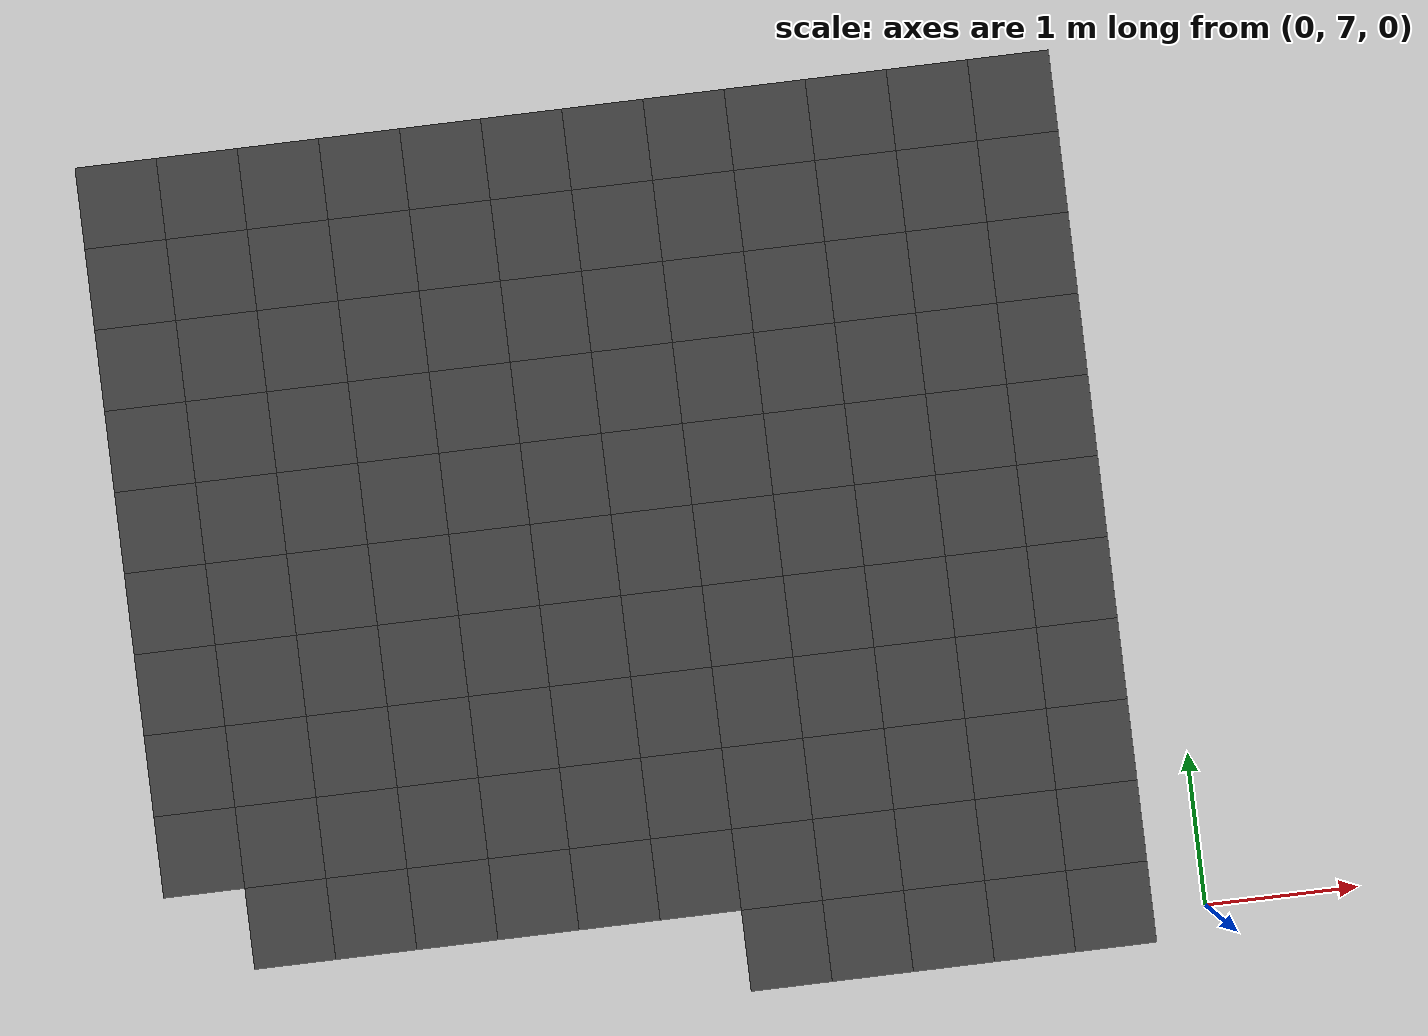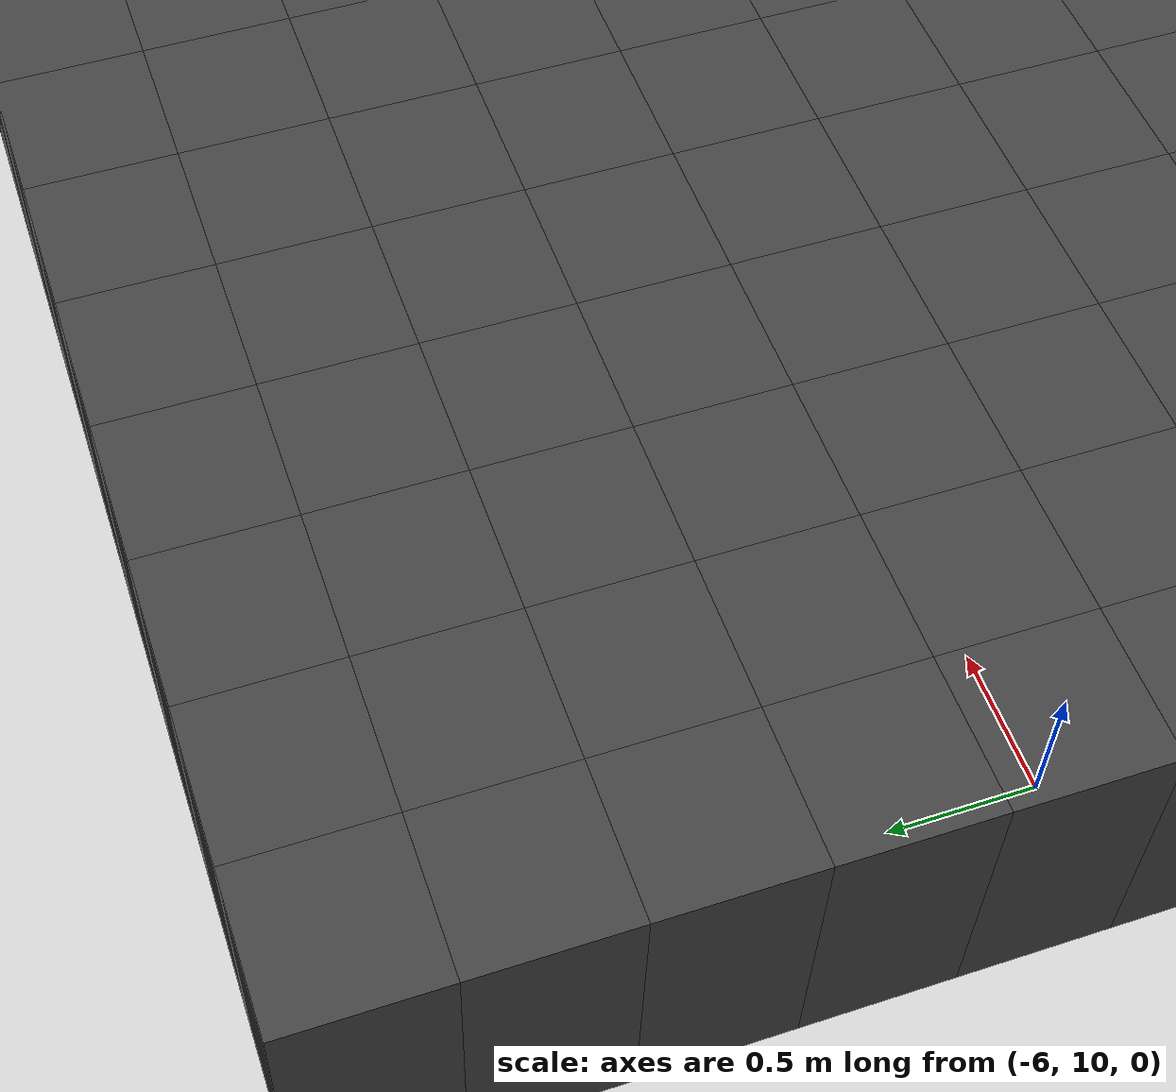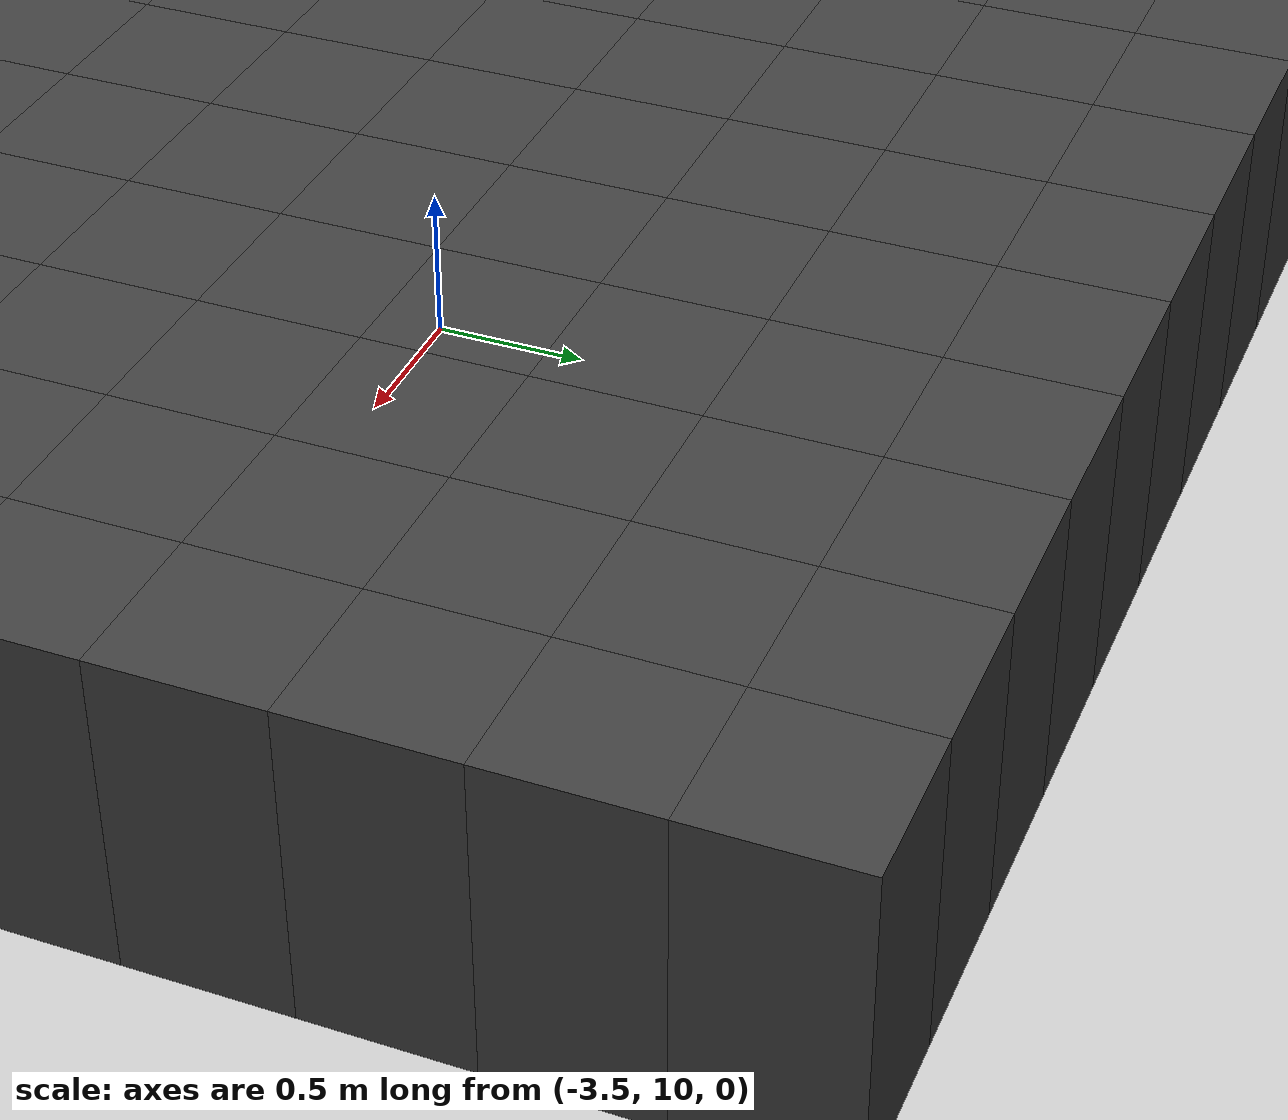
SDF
<sdf version="1.7">
 <world name="map_10726">
  <model name="ground_plane">
   <static>true</static>
   <link name="link">
    <collision name="collision">
     <geometry><plane><normal>0 0 1</normal><size>200 200</size></plane></geometry>
    </collision>
    <visual name="visual">
     <geometry><plane><normal>0 0 1</normal><size>200 200</size></plane></geometry>
     <material><ambient>0.8 0.8 0.8 1</ambient><diffuse>0.8 0.8 0.8 1</diffuse></material>
    </visual>
   </link>
  </model>
  <model name="maze_environment">
   <static>true</static>
   <link name="wall_12">
    <pose>-6.250 12.250 0.500 0 0 0</pose>
    <collision name="col"><geometry><box><size>0.5 0.5 1.0</size></box></geometry></collision>
    <visual name="vis">
     <geometry><box><size>0.5 0.5 1.0</size></box></geometry>
     <material><ambient>0.15 0.15 0.15 1</ambient><diffuse>0.25 0.25 0.25 1</diffuse></material>
    </visual>
   </link>
   <link name="wall_13">
    <pose>-5.750 12.250 0.500 0 0 0</pose>
    <collision name="col"><geometry><box><size>0.5 0.5 1.0</size></box></geometry></collision>
    <visual name="vis">
     <geometry><box><size>0.5 0.5 1.0</size></box></geometry>
     <material><ambient>0.15 0.15 0.15 1</ambient><diffuse>0.25 0.25 0.25 1</diffuse></material>
    </visual>
   </link>
   <link name="wall_14">
    <pose>-5.250 12.250 0.500 0 0 0</pose>
    <collision name="col"><geometry><box><size>0.5 0.5 1.0</size></box></geometry></collision>
    <visual name="vis">
     <geometry><box><size>0.5 0.5 1.0</size></box></geometry>
     <material><ambient>0.15 0.15 0.15 1</ambient><diffuse>0.25 0.25 0.25 1</diffuse></material>
    </visual>
   </link>
   <link name="wall_15">
    <pose>-4.750 12.250 0.500 0 0 0</pose>
    <collision name="col"><geometry><box><size>0.5 0.5 1.0</size></box></geometry></collision>
    <visual name="vis">
     <geometry><box><size>0.5 0.5 1.0</size></box></geometry>
     <material><ambient>0.15 0.15 0.15 1</ambient><diffuse>0.25 0.25 0.25 1</diffuse></material>
    </visual>
   </link>
   <link name="wall_16">
    <pose>-4.250 12.250 0.500 0 0 0</pose>
    <collision name="col"><geometry><box><size>0.5 0.5 1.0</size></box></geometry></collision>
    <visual name="vis">
     <geometry><box><size>0.5 0.5 1.0</size></box></geometry>
     <material><ambient>0.15 0.15 0.15 1</ambient><diffuse>0.25 0.25 0.25 1</diffuse></material>
    </visual>
   </link>
   <link name="wall_17">
    <pose>-3.750 12.250 0.500 0 0 0</pose>
    <collision name="col"><geometry><box><size>0.5 0.5 1.0</size></box></geometry></collision>
    <visual name="vis">
     <geometry><box><size>0.5 0.5 1.0</size></box></geometry>
     <material><ambient>0.15 0.15 0.15 1</ambient><diffuse>0.25 0.25 0.25 1</diffuse></material>
    </visual>
   </link>
   <link name="wall_18">
    <pose>-3.250 12.250 0.500 0 0 0</pose>
    <collision name="col"><geometry><box><size>0.5 0.5 1.0</size></box></geometry></collision>
    <visual name="vis">
     <geometry><box><size>0.5 0.5 1.0</size></box></geometry>
     <material><ambient>0.15 0.15 0.15 1</ambient><diffuse>0.25 0.25 0.25 1</diffuse></material>
    </visual>
   </link>
   <link name="wall_19">
    <pose>-2.750 12.250 0.500 0 0 0</pose>
    <collision name="col"><geometry><box><size>0.5 0.5 1.0</size></box></geometry></collision>
    <visual name="vis">
     <geometry><box><size>0.5 0.5 1.0</size></box></geometry>
     <material><ambient>0.15 0.15 0.15 1</ambient><diffuse>0.25 0.25 0.25 1</diffuse></material>
    </visual>
   </link>
   <link name="wall_20">
    <pose>-2.250 12.250 0.500 0 0 0</pose>
    <collision name="col"><geometry><box><size>0.5 0.5 1.0</size></box></geometry></collision>
    <visual name="vis">
     <geometry><box><size>0.5 0.5 1.0</size></box></geometry>
     <material><ambient>0.15 0.15 0.15 1</ambient><diffuse>0.25 0.25 0.25 1</diffuse></material>
    </visual>
   </link>
   <link name="wall_21">
    <pose>-1.750 12.250 0.500 0 0 0</pose>
    <collision name="col"><geometry><box><size>0.5 0.5 1.0</size></box></geometry></collision>
    <visual name="vis">
     <geometry><box><size>0.5 0.5 1.0</size></box></geometry>
     <material><ambient>0.15 0.15 0.15 1</ambient><diffuse>0.25 0.25 0.25 1</diffuse></material>
    </visual>
   </link>
   <link name="wall_22">
    <pose>-1.250 12.250 0.500 0 0 0</pose>
    <collision name="col"><geometry><box><size>0.5 0.5 1.0</size></box></geometry></collision>
    <visual name="vis">
     <geometry><box><size>0.5 0.5 1.0</size></box></geometry>
     <material><ambient>0.15 0.15 0.15 1</ambient><diffuse>0.25 0.25 0.25 1</diffuse></material>
    </visual>
   </link>
   <link name="wall_23">
    <pose>-0.750 12.250 0.500 0 0 0</pose>
    <collision name="col"><geometry><box><size>0.5 0.5 1.0</size></box></geometry></collision>
    <visual name="vis">
     <geometry><box><size>0.5 0.5 1.0</size></box></geometry>
     <material><ambient>0.15 0.15 0.15 1</ambient><diffuse>0.25 0.25 0.25 1</diffuse></material>
    </visual>
   </link>
   <link name="wall_59">
    <pose>-6.250 11.750 0.500 0 0 0</pose>
    <collision name="col"><geometry><box><size>0.5 0.5 1.0</size></box></geometry></collision>
    <visual name="vis">
     <geometry><box><size>0.5 0.5 1.0</size></box></geometry>
     <material><ambient>0.15 0.15 0.15 1</ambient><diffuse>0.25 0.25 0.25 1</diffuse></material>
    </visual>
   </link>
   <link name="wall_60">
    <pose>-5.750 11.750 0.500 0 0 0</pose>
    <collision name="col"><geometry><box><size>0.5 0.5 1.0</size></box></geometry></collision>
    <visual name="vis">
     <geometry><box><size>0.5 0.5 1.0</size></box></geometry>
     <material><ambient>0.15 0.15 0.15 1</ambient><diffuse>0.25 0.25 0.25 1</diffuse></material>
    </visual>
   </link>
   <link name="wall_61">
    <pose>-5.250 11.750 0.500 0 0 0</pose>
    <collision name="col"><geometry><box><size>0.5 0.5 1.0</size></box></geometry></collision>
    <visual name="vis">
     <geometry><box><size>0.5 0.5 1.0</size></box></geometry>
     <material><ambient>0.15 0.15 0.15 1</ambient><diffuse>0.25 0.25 0.25 1</diffuse></material>
    </visual>
   </link>
   <link name="wall_62">
    <pose>-4.750 11.750 0.500 0 0 0</pose>
    <collision name="col"><geometry><box><size>0.5 0.5 1.0</size></box></geometry></collision>
    <visual name="vis">
     <geometry><box><size>0.5 0.5 1.0</size></box></geometry>
     <material><ambient>0.15 0.15 0.15 1</ambient><diffuse>0.25 0.25 0.25 1</diffuse></material>
    </visual>
   </link>
   <link name="wall_63">
    <pose>-4.250 11.750 0.500 0 0 0</pose>
    <collision name="col"><geometry><box><size>0.5 0.5 1.0</size></box></geometry></collision>
    <visual name="vis">
     <geometry><box><size>0.5 0.5 1.0</size></box></geometry>
     <material><ambient>0.15 0.15 0.15 1</ambient><diffuse>0.25 0.25 0.25 1</diffuse></material>
    </visual>
   </link>
   <link name="wall_64">
    <pose>-3.750 11.750 0.500 0 0 0</pose>
    <collision name="col"><geometry><box><size>0.5 0.5 1.0</size></box></geometry></collision>
    <visual name="vis">
     <geometry><box><size>0.5 0.5 1.0</size></box></geometry>
     <material><ambient>0.15 0.15 0.15 1</ambient><diffuse>0.25 0.25 0.25 1</diffuse></material>
    </visual>
   </link>
   <link name="wall_65">
    <pose>-3.250 11.750 0.500 0 0 0</pose>
    <collision name="col"><geometry><box><size>0.5 0.5 1.0</size></box></geometry></collision>
    <visual name="vis">
     <geometry><box><size>0.5 0.5 1.0</size></box></geometry>
     <material><ambient>0.15 0.15 0.15 1</ambient><diffuse>0.25 0.25 0.25 1</diffuse></material>
    </visual>
   </link>
   <link name="wall_66">
    <pose>-2.750 11.750 0.500 0 0 0</pose>
    <collision name="col"><geometry><box><size>0.5 0.5 1.0</size></box></geometry></collision>
    <visual name="vis">
     <geometry><box><size>0.5 0.5 1.0</size></box></geometry>
     <material><ambient>0.15 0.15 0.15 1</ambient><diffuse>0.25 0.25 0.25 1</diffuse></material>
    </visual>
   </link>
   <link name="wall_67">
    <pose>-2.250 11.750 0.500 0 0 0</pose>
    <collision name="col"><geometry><box><size>0.5 0.5 1.0</size></box></geometry></collision>
    <visual name="vis">
     <geometry><box><size>0.5 0.5 1.0</size></box></geometry>
     <material><ambient>0.15 0.15 0.15 1</ambient><diffuse>0.25 0.25 0.25 1</diffuse></material>
    </visual>
   </link>
   <link name="wall_68">
    <pose>-1.750 11.750 0.500 0 0 0</pose>
    <collision name="col"><geometry><box><size>0.5 0.5 1.0</size></box></geometry></collision>
    <visual name="vis">
     <geometry><box><size>0.5 0.5 1.0</size></box></geometry>
     <material><ambient>0.15 0.15 0.15 1</ambient><diffuse>0.25 0.25 0.25 1</diffuse></material>
    </visual>
   </link>
   <link name="wall_69">
    <pose>-1.250 11.750 0.500 0 0 0</pose>
    <collision name="col"><geometry><box><size>0.5 0.5 1.0</size></box></geometry></collision>
    <visual name="vis">
     <geometry><box><size>0.5 0.5 1.0</size></box></geometry>
     <material><ambient>0.15 0.15 0.15 1</ambient><diffuse>0.25 0.25 0.25 1</diffuse></material>
    </visual>
   </link>
   <link name="wall_70">
    <pose>-0.750 11.750 0.500 0 0 0</pose>
    <collision name="col"><geometry><box><size>0.5 0.5 1.0</size></box></geometry></collision>
    <visual name="vis">
     <geometry><box><size>0.5 0.5 1.0</size></box></geometry>
     <material><ambient>0.15 0.15 0.15 1</ambient><diffuse>0.25 0.25 0.25 1</diffuse></material>
    </visual>
   </link>
   <link name="wall_106">
    <pose>-6.250 11.250 0.500 0 0 0</pose>
    <collision name="col"><geometry><box><size>0.5 0.5 1.0</size></box></geometry></collision>
    <visual name="vis">
     <geometry><box><size>0.5 0.5 1.0</size></box></geometry>
     <material><ambient>0.15 0.15 0.15 1</ambient><diffuse>0.25 0.25 0.25 1</diffuse></material>
    </visual>
   </link>
   <link name="wall_107">
    <pose>-5.750 11.250 0.500 0 0 0</pose>
    <collision name="col"><geometry><box><size>0.5 0.5 1.0</size></box></geometry></collision>
    <visual name="vis">
     <geometry><box><size>0.5 0.5 1.0</size></box></geometry>
     <material><ambient>0.15 0.15 0.15 1</ambient><diffuse>0.25 0.25 0.25 1</diffuse></material>
    </visual>
   </link>
   <link name="wall_108">
    <pose>-5.250 11.250 0.500 0 0 0</pose>
    <collision name="col"><geometry><box><size>0.5 0.5 1.0</size></box></geometry></collision>
    <visual name="vis">
     <geometry><box><size>0.5 0.5 1.0</size></box></geometry>
     <material><ambient>0.15 0.15 0.15 1</ambient><diffuse>0.25 0.25 0.25 1</diffuse></material>
    </visual>
   </link>
   <link name="wall_109">
    <pose>-4.750 11.250 0.500 0 0 0</pose>
    <collision name="col"><geometry><box><size>0.5 0.5 1.0</size></box></geometry></collision>
    <visual name="vis">
     <geometry><box><size>0.5 0.5 1.0</size></box></geometry>
     <material><ambient>0.15 0.15 0.15 1</ambient><diffuse>0.25 0.25 0.25 1</diffuse></material>
    </visual>
   </link>
   <link name="wall_110">
    <pose>-4.250 11.250 0.500 0 0 0</pose>
    <collision name="col"><geometry><box><size>0.5 0.5 1.0</size></box></geometry></collision>
    <visual name="vis">
     <geometry><box><size>0.5 0.5 1.0</size></box></geometry>
     <material><ambient>0.15 0.15 0.15 1</ambient><diffuse>0.25 0.25 0.25 1</diffuse></material>
    </visual>
   </link>
   <link name="wall_111">
    <pose>-3.750 11.250 0.500 0 0 0</pose>
    <collision name="col"><geometry><box><size>0.5 0.5 1.0</size></box></geometry></collision>
    <visual name="vis">
     <geometry><box><size>0.5 0.5 1.0</size></box></geometry>
     <material><ambient>0.15 0.15 0.15 1</ambient><diffuse>0.25 0.25 0.25 1</diffuse></material>
    </visual>
   </link>
   <link name="wall_112">
    <pose>-3.250 11.250 0.500 0 0 0</pose>
    <collision name="col"><geometry><box><size>0.5 0.5 1.0</size></box></geometry></collision>
    <visual name="vis">
     <geometry><box><size>0.5 0.5 1.0</size></box></geometry>
     <material><ambient>0.15 0.15 0.15 1</ambient><diffuse>0.25 0.25 0.25 1</diffuse></material>
    </visual>
   </link>
   <link name="wall_113">
    <pose>-2.750 11.250 0.500 0 0 0</pose>
    <collision name="col"><geometry><box><size>0.5 0.5 1.0</size></box></geometry></collision>
    <visual name="vis">
     <geometry><box><size>0.5 0.5 1.0</size></box></geometry>
     <material><ambient>0.15 0.15 0.15 1</ambient><diffuse>0.25 0.25 0.25 1</diffuse></material>
    </visual>
   </link>
   <link name="wall_114">
    <pose>-2.250 11.250 0.500 0 0 0</pose>
    <collision name="col"><geometry><box><size>0.5 0.5 1.0</size></box></geometry></collision>
    <visual name="vis">
     <geometry><box><size>0.5 0.5 1.0</size></box></geometry>
     <material><ambient>0.15 0.15 0.15 1</ambient><diffuse>0.25 0.25 0.25 1</diffuse></material>
    </visual>
   </link>
   <link name="wall_115">
    <pose>-1.750 11.250 0.500 0 0 0</pose>
    <collision name="col"><geometry><box><size>0.5 0.5 1.0</size></box></geometry></collision>
    <visual name="vis">
     <geometry><box><size>0.5 0.5 1.0</size></box></geometry>
     <material><ambient>0.15 0.15 0.15 1</ambient><diffuse>0.25 0.25 0.25 1</diffuse></material>
    </visual>
   </link>
   <link name="wall_116">
    <pose>-1.250 11.250 0.500 0 0 0</pose>
    <collision name="col"><geometry><box><size>0.5 0.5 1.0</size></box></geometry></collision>
    <visual name="vis">
     <geometry><box><size>0.5 0.5 1.0</size></box></geometry>
     <material><ambient>0.15 0.15 0.15 1</ambient><diffuse>0.25 0.25 0.25 1</diffuse></material>
    </visual>
   </link>
   <link name="wall_117">
    <pose>-0.750 11.250 0.500 0 0 0</pose>
    <collision name="col"><geometry><box><size>0.5 0.5 1.0</size></box></geometry></collision>
    <visual name="vis">
     <geometry><box><size>0.5 0.5 1.0</size></box></geometry>
     <material><ambient>0.15 0.15 0.15 1</ambient><diffuse>0.25 0.25 0.25 1</diffuse></material>
    </visual>
   </link>
   <link name="wall_153">
    <pose>-6.250 10.750 0.500 0 0 0</pose>
    <collision name="col"><geometry><box><size>0.5 0.5 1.0</size></box></geometry></collision>
    <visual name="vis">
     <geometry><box><size>0.5 0.5 1.0</size></box></geometry>
     <material><ambient>0.15 0.15 0.15 1</ambient><diffuse>0.25 0.25 0.25 1</diffuse></material>
    </visual>
   </link>
   <link name="wall_154">
    <pose>-5.750 10.750 0.500 0 0 0</pose>
    <collision name="col"><geometry><box><size>0.5 0.5 1.0</size></box></geometry></collision>
    <visual name="vis">
     <geometry><box><size>0.5 0.5 1.0</size></box></geometry>
     <material><ambient>0.15 0.15 0.15 1</ambient><diffuse>0.25 0.25 0.25 1</diffuse></material>
    </visual>
   </link>
   <link name="wall_155">
    <pose>-5.250 10.750 0.500 0 0 0</pose>
    <collision name="col"><geometry><box><size>0.5 0.5 1.0</size></box></geometry></collision>
    <visual name="vis">
     <geometry><box><size>0.5 0.5 1.0</size></box></geometry>
     <material><ambient>0.15 0.15 0.15 1</ambient><diffuse>0.25 0.25 0.25 1</diffuse></material>
    </visual>
   </link>
   <link name="wall_156">
    <pose>-4.750 10.750 0.500 0 0 0</pose>
    <collision name="col"><geometry><box><size>0.5 0.5 1.0</size></box></geometry></collision>
    <visual name="vis">
     <geometry><box><size>0.5 0.5 1.0</size></box></geometry>
     <material><ambient>0.15 0.15 0.15 1</ambient><diffuse>0.25 0.25 0.25 1</diffuse></material>
    </visual>
   </link>
   <link name="wall_157">
    <pose>-4.250 10.750 0.500 0 0 0</pose>
    <collision name="col"><geometry><box><size>0.5 0.5 1.0</size></box></geometry></collision>
    <visual name="vis">
     <geometry><box><size>0.5 0.5 1.0</size></box></geometry>
     <material><ambient>0.15 0.15 0.15 1</ambient><diffuse>0.25 0.25 0.25 1</diffuse></material>
    </visual>
   </link>
   <link name="wall_158">
    <pose>-3.750 10.750 0.500 0 0 0</pose>
    <collision name="col"><geometry><box><size>0.5 0.5 1.0</size></box></geometry></collision>
    <visual name="vis">
     <geometry><box><size>0.5 0.5 1.0</size></box></geometry>
     <material><ambient>0.15 0.15 0.15 1</ambient><diffuse>0.25 0.25 0.25 1</diffuse></material>
    </visual>
   </link>
   <link name="wall_159">
    <pose>-3.250 10.750 0.500 0 0 0</pose>
    <collision name="col"><geometry><box><size>0.5 0.5 1.0</size></box></geometry></collision>
    <visual name="vis">
     <geometry><box><size>0.5 0.5 1.0</size></box></geometry>
     <material><ambient>0.15 0.15 0.15 1</ambient><diffuse>0.25 0.25 0.25 1</diffuse></material>
    </visual>
   </link>
   <link name="wall_160">
    <pose>-2.750 10.750 0.500 0 0 0</pose>
    <collision name="col"><geometry><box><size>0.5 0.5 1.0</size></box></geometry></collision>
    <visual name="vis">
     <geometry><box><size>0.5 0.5 1.0</size></box></geometry>
     <material><ambient>0.15 0.15 0.15 1</ambient><diffuse>0.25 0.25 0.25 1</diffuse></material>
    </visual>
   </link>
   <link name="wall_161">
    <pose>-2.250 10.750 0.500 0 0 0</pose>
    <collision name="col"><geometry><box><size>0.5 0.5 1.0</size></box></geometry></collision>
    <visual name="vis">
     <geometry><box><size>0.5 0.5 1.0</size></box></geometry>
     <material><ambient>0.15 0.15 0.15 1</ambient><diffuse>0.25 0.25 0.25 1</diffuse></material>
    </visual>
   </link>
   <link name="wall_162">
    <pose>-1.750 10.750 0.500 0 0 0</pose>
    <collision name="col"><geometry><box><size>0.5 0.5 1.0</size></box></geometry></collision>
    <visual name="vis">
     <geometry><box><size>0.5 0.5 1.0</size></box></geometry>
     <material><ambient>0.15 0.15 0.15 1</ambient><diffuse>0.25 0.25 0.25 1</diffuse></material>
    </visual>
   </link>
   <link name="wall_163">
    <pose>-1.250 10.750 0.500 0 0 0</pose>
    <collision name="col"><geometry><box><size>0.5 0.5 1.0</size></box></geometry></collision>
    <visual name="vis">
     <geometry><box><size>0.5 0.5 1.0</size></box></geometry>
     <material><ambient>0.15 0.15 0.15 1</ambient><diffuse>0.25 0.25 0.25 1</diffuse></material>
    </visual>
   </link>
   <link name="wall_164">
    <pose>-0.750 10.750 0.500 0 0 0</pose>
    <collision name="col"><geometry><box><size>0.5 0.5 1.0</size></box></geometry></collision>
    <visual name="vis">
     <geometry><box><size>0.5 0.5 1.0</size></box></geometry>
     <material><ambient>0.15 0.15 0.15 1</ambient><diffuse>0.25 0.25 0.25 1</diffuse></material>
    </visual>
   </link>
   <link name="wall_202">
    <pose>-6.250 10.250 0.500 0 0 0</pose>
    <collision name="col"><geometry><box><size>0.5 0.5 1.0</size></box></geometry></collision>
    <visual name="vis">
     <geometry><box><size>0.5 0.5 1.0</size></box></geometry>
     <material><ambient>0.15 0.15 0.15 1</ambient><diffuse>0.25 0.25 0.25 1</diffuse></material>
    </visual>
   </link>
   <link name="wall_203">
    <pose>-5.750 10.250 0.500 0 0 0</pose>
    <collision name="col"><geometry><box><size>0.5 0.5 1.0</size></box></geometry></collision>
    <visual name="vis">
     <geometry><box><size>0.5 0.5 1.0</size></box></geometry>
     <material><ambient>0.15 0.15 0.15 1</ambient><diffuse>0.25 0.25 0.25 1</diffuse></material>
    </visual>
   </link>
   <link name="wall_204">
    <pose>-5.250 10.250 0.500 0 0 0</pose>
    <collision name="col"><geometry><box><size>0.5 0.5 1.0</size></box></geometry></collision>
    <visual name="vis">
     <geometry><box><size>0.5 0.5 1.0</size></box></geometry>
     <material><ambient>0.15 0.15 0.15 1</ambient><diffuse>0.25 0.25 0.25 1</diffuse></material>
    </visual>
   </link>
   <link name="wall_205">
    <pose>-4.750 10.250 0.500 0 0 0</pose>
    <collision name="col"><geometry><box><size>0.5 0.5 1.0</size></box></geometry></collision>
    <visual name="vis">
     <geometry><box><size>0.5 0.5 1.0</size></box></geometry>
     <material><ambient>0.15 0.15 0.15 1</ambient><diffuse>0.25 0.25 0.25 1</diffuse></material>
    </visual>
   </link>
   <link name="wall_206">
    <pose>-4.250 10.250 0.500 0 0 0</pose>
    <collision name="col"><geometry><box><size>0.5 0.5 1.0</size></box></geometry></collision>
    <visual name="vis">
     <geometry><box><size>0.5 0.5 1.0</size></box></geometry>
     <material><ambient>0.15 0.15 0.15 1</ambient><diffuse>0.25 0.25 0.25 1</diffuse></material>
    </visual>
   </link>
   <link name="wall_207">
    <pose>-3.750 10.250 0.500 0 0 0</pose>
    <collision name="col"><geometry><box><size>0.5 0.5 1.0</size></box></geometry></collision>
    <visual name="vis">
     <geometry><box><size>0.5 0.5 1.0</size></box></geometry>
     <material><ambient>0.15 0.15 0.15 1</ambient><diffuse>0.25 0.25 0.25 1</diffuse></material>
    </visual>
   </link>
   <link name="wall_208">
    <pose>-3.250 10.250 0.500 0 0 0</pose>
    <collision name="col"><geometry><box><size>0.5 0.5 1.0</size></box></geometry></collision>
    <visual name="vis">
     <geometry><box><size>0.5 0.5 1.0</size></box></geometry>
     <material><ambient>0.15 0.15 0.15 1</ambient><diffuse>0.25 0.25 0.25 1</diffuse></material>
    </visual>
   </link>
   <link name="wall_209">
    <pose>-2.750 10.250 0.500 0 0 0</pose>
    <collision name="col"><geometry><box><size>0.5 0.5 1.0</size></box></geometry></collision>
    <visual name="vis">
     <geometry><box><size>0.5 0.5 1.0</size></box></geometry>
     <material><ambient>0.15 0.15 0.15 1</ambient><diffuse>0.25 0.25 0.25 1</diffuse></material>
    </visual>
   </link>
   <link name="wall_210">
    <pose>-2.250 10.250 0.500 0 0 0</pose>
    <collision name="col"><geometry><box><size>0.5 0.5 1.0</size></box></geometry></collision>
    <visual name="vis">
     <geometry><box><size>0.5 0.5 1.0</size></box></geometry>
     <material><ambient>0.15 0.15 0.15 1</ambient><diffuse>0.25 0.25 0.25 1</diffuse></material>
    </visual>
   </link>
   <link name="wall_211">
    <pose>-1.750 10.250 0.500 0 0 0</pose>
    <collision name="col"><geometry><box><size>0.5 0.5 1.0</size></box></geometry></collision>
    <visual name="vis">
     <geometry><box><size>0.5 0.5 1.0</size></box></geometry>
     <material><ambient>0.15 0.15 0.15 1</ambient><diffuse>0.25 0.25 0.25 1</diffuse></material>
    </visual>
   </link>
   <link name="wall_212">
    <pose>-1.250 10.250 0.500 0 0 0</pose>
    <collision name="col"><geometry><box><size>0.5 0.5 1.0</size></box></geometry></collision>
    <visual name="vis">
     <geometry><box><size>0.5 0.5 1.0</size></box></geometry>
     <material><ambient>0.15 0.15 0.15 1</ambient><diffuse>0.25 0.25 0.25 1</diffuse></material>
    </visual>
   </link>
   <link name="wall_213">
    <pose>-0.750 10.250 0.500 0 0 0</pose>
    <collision name="col"><geometry><box><size>0.5 0.5 1.0</size></box></geometry></collision>
    <visual name="vis">
     <geometry><box><size>0.5 0.5 1.0</size></box></geometry>
     <material><ambient>0.15 0.15 0.15 1</ambient><diffuse>0.25 0.25 0.25 1</diffuse></material>
    </visual>
   </link>
   <link name="wall_251">
    <pose>-6.250 9.750 0.500 0 0 0</pose>
    <collision name="col"><geometry><box><size>0.5 0.5 1.0</size></box></geometry></collision>
    <visual name="vis">
     <geometry><box><size>0.5 0.5 1.0</size></box></geometry>
     <material><ambient>0.15 0.15 0.15 1</ambient><diffuse>0.25 0.25 0.25 1</diffuse></material>
    </visual>
   </link>
   <link name="wall_252">
    <pose>-5.750 9.750 0.500 0 0 0</pose>
    <collision name="col"><geometry><box><size>0.5 0.5 1.0</size></box></geometry></collision>
    <visual name="vis">
     <geometry><box><size>0.5 0.5 1.0</size></box></geometry>
     <material><ambient>0.15 0.15 0.15 1</ambient><diffuse>0.25 0.25 0.25 1</diffuse></material>
    </visual>
   </link>
   <link name="wall_253">
    <pose>-5.250 9.750 0.500 0 0 0</pose>
    <collision name="col"><geometry><box><size>0.5 0.5 1.0</size></box></geometry></collision>
    <visual name="vis">
     <geometry><box><size>0.5 0.5 1.0</size></box></geometry>
     <material><ambient>0.15 0.15 0.15 1</ambient><diffuse>0.25 0.25 0.25 1</diffuse></material>
    </visual>
   </link>
   <link name="wall_254">
    <pose>-4.750 9.750 0.500 0 0 0</pose>
    <collision name="col"><geometry><box><size>0.5 0.5 1.0</size></box></geometry></collision>
    <visual name="vis">
     <geometry><box><size>0.5 0.5 1.0</size></box></geometry>
     <material><ambient>0.15 0.15 0.15 1</ambient><diffuse>0.25 0.25 0.25 1</diffuse></material>
    </visual>
   </link>
   <link name="wall_255">
    <pose>-4.250 9.750 0.500 0 0 0</pose>
    <collision name="col"><geometry><box><size>0.5 0.5 1.0</size></box></geometry></collision>
    <visual name="vis">
     <geometry><box><size>0.5 0.5 1.0</size></box></geometry>
     <material><ambient>0.15 0.15 0.15 1</ambient><diffuse>0.25 0.25 0.25 1</diffuse></material>
    </visual>
   </link>
   <link name="wall_256">
    <pose>-3.750 9.750 0.500 0 0 0</pose>
    <collision name="col"><geometry><box><size>0.5 0.5 1.0</size></box></geometry></collision>
    <visual name="vis">
     <geometry><box><size>0.5 0.5 1.0</size></box></geometry>
     <material><ambient>0.15 0.15 0.15 1</ambient><diffuse>0.25 0.25 0.25 1</diffuse></material>
    </visual>
   </link>
   <link name="wall_257">
    <pose>-3.250 9.750 0.500 0 0 0</pose>
    <collision name="col"><geometry><box><size>0.5 0.5 1.0</size></box></geometry></collision>
    <visual name="vis">
     <geometry><box><size>0.5 0.5 1.0</size></box></geometry>
     <material><ambient>0.15 0.15 0.15 1</ambient><diffuse>0.25 0.25 0.25 1</diffuse></material>
    </visual>
   </link>
   <link name="wall_258">
    <pose>-2.750 9.750 0.500 0 0 0</pose>
    <collision name="col"><geometry><box><size>0.5 0.5 1.0</size></box></geometry></collision>
    <visual name="vis">
     <geometry><box><size>0.5 0.5 1.0</size></box></geometry>
     <material><ambient>0.15 0.15 0.15 1</ambient><diffuse>0.25 0.25 0.25 1</diffuse></material>
    </visual>
   </link>
   <link name="wall_259">
    <pose>-2.250 9.750 0.500 0 0 0</pose>
    <collision name="col"><geometry><box><size>0.5 0.5 1.0</size></box></geometry></collision>
    <visual name="vis">
     <geometry><box><size>0.5 0.5 1.0</size></box></geometry>
     <material><ambient>0.15 0.15 0.15 1</ambient><diffuse>0.25 0.25 0.25 1</diffuse></material>
    </visual>
   </link>
   <link name="wall_260">
    <pose>-1.750 9.750 0.500 0 0 0</pose>
    <collision name="col"><geometry><box><size>0.5 0.5 1.0</size></box></geometry></collision>
    <visual name="vis">
     <geometry><box><size>0.5 0.5 1.0</size></box></geometry>
     <material><ambient>0.15 0.15 0.15 1</ambient><diffuse>0.25 0.25 0.25 1</diffuse></material>
    </visual>
   </link>
   <link name="wall_261">
    <pose>-1.250 9.750 0.500 0 0 0</pose>
    <collision name="col"><geometry><box><size>0.5 0.5 1.0</size></box></geometry></collision>
    <visual name="vis">
     <geometry><box><size>0.5 0.5 1.0</size></box></geometry>
     <material><ambient>0.15 0.15 0.15 1</ambient><diffuse>0.25 0.25 0.25 1</diffuse></material>
    </visual>
   </link>
   <link name="wall_262">
    <pose>-0.750 9.750 0.500 0 0 0</pose>
    <collision name="col"><geometry><box><size>0.5 0.5 1.0</size></box></geometry></collision>
    <visual name="vis">
     <geometry><box><size>0.5 0.5 1.0</size></box></geometry>
     <material><ambient>0.15 0.15 0.15 1</ambient><diffuse>0.25 0.25 0.25 1</diffuse></material>
    </visual>
   </link>
   <link name="wall_300">
    <pose>-6.250 9.250 0.500 0 0 0</pose>
    <collision name="col"><geometry><box><size>0.5 0.5 1.0</size></box></geometry></collision>
    <visual name="vis">
     <geometry><box><size>0.5 0.5 1.0</size></box></geometry>
     <material><ambient>0.15 0.15 0.15 1</ambient><diffuse>0.25 0.25 0.25 1</diffuse></material>
    </visual>
   </link>
   <link name="wall_301">
    <pose>-5.750 9.250 0.500 0 0 0</pose>
    <collision name="col"><geometry><box><size>0.5 0.5 1.0</size></box></geometry></collision>
    <visual name="vis">
     <geometry><box><size>0.5 0.5 1.0</size></box></geometry>
     <material><ambient>0.15 0.15 0.15 1</ambient><diffuse>0.25 0.25 0.25 1</diffuse></material>
    </visual>
   </link>
   <link name="wall_302">
    <pose>-5.250 9.250 0.500 0 0 0</pose>
    <collision name="col"><geometry><box><size>0.5 0.5 1.0</size></box></geometry></collision>
    <visual name="vis">
     <geometry><box><size>0.5 0.5 1.0</size></box></geometry>
     <material><ambient>0.15 0.15 0.15 1</ambient><diffuse>0.25 0.25 0.25 1</diffuse></material>
    </visual>
   </link>
   <link name="wall_303">
    <pose>-4.750 9.250 0.500 0 0 0</pose>
    <collision name="col"><geometry><box><size>0.5 0.5 1.0</size></box></geometry></collision>
    <visual name="vis">
     <geometry><box><size>0.5 0.5 1.0</size></box></geometry>
     <material><ambient>0.15 0.15 0.15 1</ambient><diffuse>0.25 0.25 0.25 1</diffuse></material>
    </visual>
   </link>
   <link name="wall_304">
    <pose>-4.250 9.250 0.500 0 0 0</pose>
    <collision name="col"><geometry><box><size>0.5 0.5 1.0</size></box></geometry></collision>
    <visual name="vis">
     <geometry><box><size>0.5 0.5 1.0</size></box></geometry>
     <material><ambient>0.15 0.15 0.15 1</ambient><diffuse>0.25 0.25 0.25 1</diffuse></material>
    </visual>
   </link>
   <link name="wall_305">
    <pose>-3.750 9.250 0.500 0 0 0</pose>
    <collision name="col"><geometry><box><size>0.5 0.5 1.0</size></box></geometry></collision>
    <visual name="vis">
     <geometry><box><size>0.5 0.5 1.0</size></box></geometry>
     <material><ambient>0.15 0.15 0.15 1</ambient><diffuse>0.25 0.25 0.25 1</diffuse></material>
    </visual>
   </link>
   <link name="wall_306">
    <pose>-3.250 9.250 0.500 0 0 0</pose>
    <collision name="col"><geometry><box><size>0.5 0.5 1.0</size></box></geometry></collision>
    <visual name="vis">
     <geometry><box><size>0.5 0.5 1.0</size></box></geometry>
     <material><ambient>0.15 0.15 0.15 1</ambient><diffuse>0.25 0.25 0.25 1</diffuse></material>
    </visual>
   </link>
   <link name="wall_307">
    <pose>-2.750 9.250 0.500 0 0 0</pose>
    <collision name="col"><geometry><box><size>0.5 0.5 1.0</size></box></geometry></collision>
    <visual name="vis">
     <geometry><box><size>0.5 0.5 1.0</size></box></geometry>
     <material><ambient>0.15 0.15 0.15 1</ambient><diffuse>0.25 0.25 0.25 1</diffuse></material>
    </visual>
   </link>
   <link name="wall_308">
    <pose>-2.250 9.250 0.500 0 0 0</pose>
    <collision name="col"><geometry><box><size>0.5 0.5 1.0</size></box></geometry></collision>
    <visual name="vis">
     <geometry><box><size>0.5 0.5 1.0</size></box></geometry>
     <material><ambient>0.15 0.15 0.15 1</ambient><diffuse>0.25 0.25 0.25 1</diffuse></material>
    </visual>
   </link>
   <link name="wall_309">
    <pose>-1.750 9.250 0.500 0 0 0</pose>
    <collision name="col"><geometry><box><size>0.5 0.5 1.0</size></box></geometry></collision>
    <visual name="vis">
     <geometry><box><size>0.5 0.5 1.0</size></box></geometry>
     <material><ambient>0.15 0.15 0.15 1</ambient><diffuse>0.25 0.25 0.25 1</diffuse></material>
    </visual>
   </link>
   <link name="wall_310">
    <pose>-1.250 9.250 0.500 0 0 0</pose>
    <collision name="col"><geometry><box><size>0.5 0.5 1.0</size></box></geometry></collision>
    <visual name="vis">
     <geometry><box><size>0.5 0.5 1.0</size></box></geometry>
     <material><ambient>0.15 0.15 0.15 1</ambient><diffuse>0.25 0.25 0.25 1</diffuse></material>
    </visual>
   </link>
   <link name="wall_311">
    <pose>-0.750 9.250 0.500 0 0 0</pose>
    <collision name="col"><geometry><box><size>0.5 0.5 1.0</size></box></geometry></collision>
    <visual name="vis">
     <geometry><box><size>0.5 0.5 1.0</size></box></geometry>
     <material><ambient>0.15 0.15 0.15 1</ambient><diffuse>0.25 0.25 0.25 1</diffuse></material>
    </visual>
   </link>
   <link name="wall_349">
    <pose>-6.250 8.750 0.500 0 0 0</pose>
    <collision name="col"><geometry><box><size>0.5 0.5 1.0</size></box></geometry></collision>
    <visual name="vis">
     <geometry><box><size>0.5 0.5 1.0</size></box></geometry>
     <material><ambient>0.15 0.15 0.15 1</ambient><diffuse>0.25 0.25 0.25 1</diffuse></material>
    </visual>
   </link>
   <link name="wall_350">
    <pose>-5.750 8.750 0.500 0 0 0</pose>
    <collision name="col"><geometry><box><size>0.5 0.5 1.0</size></box></geometry></collision>
    <visual name="vis">
     <geometry><box><size>0.5 0.5 1.0</size></box></geometry>
     <material><ambient>0.15 0.15 0.15 1</ambient><diffuse>0.25 0.25 0.25 1</diffuse></material>
    </visual>
   </link>
   <link name="wall_351">
    <pose>-5.250 8.750 0.500 0 0 0</pose>
    <collision name="col"><geometry><box><size>0.5 0.5 1.0</size></box></geometry></collision>
    <visual name="vis">
     <geometry><box><size>0.5 0.5 1.0</size></box></geometry>
     <material><ambient>0.15 0.15 0.15 1</ambient><diffuse>0.25 0.25 0.25 1</diffuse></material>
    </visual>
   </link>
   <link name="wall_352">
    <pose>-4.750 8.750 0.500 0 0 0</pose>
    <collision name="col"><geometry><box><size>0.5 0.5 1.0</size></box></geometry></collision>
    <visual name="vis">
     <geometry><box><size>0.5 0.5 1.0</size></box></geometry>
     <material><ambient>0.15 0.15 0.15 1</ambient><diffuse>0.25 0.25 0.25 1</diffuse></material>
    </visual>
   </link>
   <link name="wall_353">
    <pose>-4.250 8.750 0.500 0 0 0</pose>
    <collision name="col"><geometry><box><size>0.5 0.5 1.0</size></box></geometry></collision>
    <visual name="vis">
     <geometry><box><size>0.5 0.5 1.0</size></box></geometry>
     <material><ambient>0.15 0.15 0.15 1</ambient><diffuse>0.25 0.25 0.25 1</diffuse></material>
    </visual>
   </link>
   <link name="wall_354">
    <pose>-3.750 8.750 0.500 0 0 0</pose>
    <collision name="col"><geometry><box><size>0.5 0.5 1.0</size></box></geometry></collision>
    <visual name="vis">
     <geometry><box><size>0.5 0.5 1.0</size></box></geometry>
     <material><ambient>0.15 0.15 0.15 1</ambient><diffuse>0.25 0.25 0.25 1</diffuse></material>
    </visual>
   </link>
   <link name="wall_355">
    <pose>-3.250 8.750 0.500 0 0 0</pose>
    <collision name="col"><geometry><box><size>0.5 0.5 1.0</size></box></geometry></collision>
    <visual name="vis">
     <geometry><box><size>0.5 0.5 1.0</size></box></geometry>
     <material><ambient>0.15 0.15 0.15 1</ambient><diffuse>0.25 0.25 0.25 1</diffuse></material>
    </visual>
   </link>
   <link name="wall_356">
    <pose>-2.750 8.750 0.500 0 0 0</pose>
    <collision name="col"><geometry><box><size>0.5 0.5 1.0</size></box></geometry></collision>
    <visual name="vis">
     <geometry><box><size>0.5 0.5 1.0</size></box></geometry>
     <material><ambient>0.15 0.15 0.15 1</ambient><diffuse>0.25 0.25 0.25 1</diffuse></material>
    </visual>
   </link>
   <link name="wall_357">
    <pose>-2.250 8.750 0.500 0 0 0</pose>
    <collision name="col"><geometry><box><size>0.5 0.5 1.0</size></box></geometry></collision>
    <visual name="vis">
     <geometry><box><size>0.5 0.5 1.0</size></box></geometry>
     <material><ambient>0.15 0.15 0.15 1</ambient><diffuse>0.25 0.25 0.25 1</diffuse></material>
    </visual>
   </link>
   <link name="wall_358">
    <pose>-1.750 8.750 0.500 0 0 0</pose>
    <collision name="col"><geometry><box><size>0.5 0.5 1.0</size></box></geometry></collision>
    <visual name="vis">
     <geometry><box><size>0.5 0.5 1.0</size></box></geometry>
     <material><ambient>0.15 0.15 0.15 1</ambient><diffuse>0.25 0.25 0.25 1</diffuse></material>
    </visual>
   </link>
   <link name="wall_359">
    <pose>-1.250 8.750 0.500 0 0 0</pose>
    <collision name="col"><geometry><box><size>0.5 0.5 1.0</size></box></geometry></collision>
    <visual name="vis">
     <geometry><box><size>0.5 0.5 1.0</size></box></geometry>
     <material><ambient>0.15 0.15 0.15 1</ambient><diffuse>0.25 0.25 0.25 1</diffuse></material>
    </visual>
   </link>
   <link name="wall_360">
    <pose>-0.750 8.750 0.500 0 0 0</pose>
    <collision name="col"><geometry><box><size>0.5 0.5 1.0</size></box></geometry></collision>
    <visual name="vis">
     <geometry><box><size>0.5 0.5 1.0</size></box></geometry>
     <material><ambient>0.15 0.15 0.15 1</ambient><diffuse>0.25 0.25 0.25 1</diffuse></material>
    </visual>
   </link>
   <link name="wall_390">
    <pose>-6.250 8.250 0.500 0 0 0</pose>
    <collision name="col"><geometry><box><size>0.5 0.5 1.0</size></box></geometry></collision>
    <visual name="vis">
     <geometry><box><size>0.5 0.5 1.0</size></box></geometry>
     <material><ambient>0.15 0.15 0.15 1</ambient><diffuse>0.25 0.25 0.25 1</diffuse></material>
    </visual>
   </link>
   <link name="wall_391">
    <pose>-5.750 8.250 0.500 0 0 0</pose>
    <collision name="col"><geometry><box><size>0.5 0.5 1.0</size></box></geometry></collision>
    <visual name="vis">
     <geometry><box><size>0.5 0.5 1.0</size></box></geometry>
     <material><ambient>0.15 0.15 0.15 1</ambient><diffuse>0.25 0.25 0.25 1</diffuse></material>
    </visual>
   </link>
   <link name="wall_392">
    <pose>-5.250 8.250 0.500 0 0 0</pose>
    <collision name="col"><geometry><box><size>0.5 0.5 1.0</size></box></geometry></collision>
    <visual name="vis">
     <geometry><box><size>0.5 0.5 1.0</size></box></geometry>
     <material><ambient>0.15 0.15 0.15 1</ambient><diffuse>0.25 0.25 0.25 1</diffuse></material>
    </visual>
   </link>
   <link name="wall_393">
    <pose>-4.750 8.250 0.500 0 0 0</pose>
    <collision name="col"><geometry><box><size>0.5 0.5 1.0</size></box></geometry></collision>
    <visual name="vis">
     <geometry><box><size>0.5 0.5 1.0</size></box></geometry>
     <material><ambient>0.15 0.15 0.15 1</ambient><diffuse>0.25 0.25 0.25 1</diffuse></material>
    </visual>
   </link>
   <link name="wall_394">
    <pose>-4.250 8.250 0.500 0 0 0</pose>
    <collision name="col"><geometry><box><size>0.5 0.5 1.0</size></box></geometry></collision>
    <visual name="vis">
     <geometry><box><size>0.5 0.5 1.0</size></box></geometry>
     <material><ambient>0.15 0.15 0.15 1</ambient><diffuse>0.25 0.25 0.25 1</diffuse></material>
    </visual>
   </link>
   <link name="wall_395">
    <pose>-3.750 8.250 0.500 0 0 0</pose>
    <collision name="col"><geometry><box><size>0.5 0.5 1.0</size></box></geometry></collision>
    <visual name="vis">
     <geometry><box><size>0.5 0.5 1.0</size></box></geometry>
     <material><ambient>0.15 0.15 0.15 1</ambient><diffuse>0.25 0.25 0.25 1</diffuse></material>
    </visual>
   </link>
   <link name="wall_396">
    <pose>-3.250 8.250 0.500 0 0 0</pose>
    <collision name="col"><geometry><box><size>0.5 0.5 1.0</size></box></geometry></collision>
    <visual name="vis">
     <geometry><box><size>0.5 0.5 1.0</size></box></geometry>
     <material><ambient>0.15 0.15 0.15 1</ambient><diffuse>0.25 0.25 0.25 1</diffuse></material>
    </visual>
   </link>
   <link name="wall_397">
    <pose>-2.750 8.250 0.500 0 0 0</pose>
    <collision name="col"><geometry><box><size>0.5 0.5 1.0</size></box></geometry></collision>
    <visual name="vis">
     <geometry><box><size>0.5 0.5 1.0</size></box></geometry>
     <material><ambient>0.15 0.15 0.15 1</ambient><diffuse>0.25 0.25 0.25 1</diffuse></material>
    </visual>
   </link>
   <link name="wall_398">
    <pose>-2.250 8.250 0.500 0 0 0</pose>
    <collision name="col"><geometry><box><size>0.5 0.5 1.0</size></box></geometry></collision>
    <visual name="vis">
     <geometry><box><size>0.5 0.5 1.0</size></box></geometry>
     <material><ambient>0.15 0.15 0.15 1</ambient><diffuse>0.25 0.25 0.25 1</diffuse></material>
    </visual>
   </link>
   <link name="wall_399">
    <pose>-1.750 8.250 0.500 0 0 0</pose>
    <collision name="col"><geometry><box><size>0.5 0.5 1.0</size></box></geometry></collision>
    <visual name="vis">
     <geometry><box><size>0.5 0.5 1.0</size></box></geometry>
     <material><ambient>0.15 0.15 0.15 1</ambient><diffuse>0.25 0.25 0.25 1</diffuse></material>
    </visual>
   </link>
   <link name="wall_400">
    <pose>-1.250 8.250 0.500 0 0 0</pose>
    <collision name="col"><geometry><box><size>0.5 0.5 1.0</size></box></geometry></collision>
    <visual name="vis">
     <geometry><box><size>0.5 0.5 1.0</size></box></geometry>
     <material><ambient>0.15 0.15 0.15 1</ambient><diffuse>0.25 0.25 0.25 1</diffuse></material>
    </visual>
   </link>
   <link name="wall_401">
    <pose>-0.750 8.250 0.500 0 0 0</pose>
    <collision name="col"><geometry><box><size>0.5 0.5 1.0</size></box></geometry></collision>
    <visual name="vis">
     <geometry><box><size>0.5 0.5 1.0</size></box></geometry>
     <material><ambient>0.15 0.15 0.15 1</ambient><diffuse>0.25 0.25 0.25 1</diffuse></material>
    </visual>
   </link>
   <link name="wall_432">
    <pose>-5.750 7.750 0.500 0 0 0</pose>
    <collision name="col"><geometry><box><size>0.5 0.5 1.0</size></box></geometry></collision>
    <visual name="vis">
     <geometry><box><size>0.5 0.5 1.0</size></box></geometry>
     <material><ambient>0.15 0.15 0.15 1</ambient><diffuse>0.25 0.25 0.25 1</diffuse></material>
    </visual>
   </link>
   <link name="wall_433">
    <pose>-5.250 7.750 0.500 0 0 0</pose>
    <collision name="col"><geometry><box><size>0.5 0.5 1.0</size></box></geometry></collision>
    <visual name="vis">
     <geometry><box><size>0.5 0.5 1.0</size></box></geometry>
     <material><ambient>0.15 0.15 0.15 1</ambient><diffuse>0.25 0.25 0.25 1</diffuse></material>
    </visual>
   </link>
   <link name="wall_434">
    <pose>-4.750 7.750 0.500 0 0 0</pose>
    <collision name="col"><geometry><box><size>0.5 0.5 1.0</size></box></geometry></collision>
    <visual name="vis">
     <geometry><box><size>0.5 0.5 1.0</size></box></geometry>
     <material><ambient>0.15 0.15 0.15 1</ambient><diffuse>0.25 0.25 0.25 1</diffuse></material>
    </visual>
   </link>
   <link name="wall_435">
    <pose>-4.250 7.750 0.500 0 0 0</pose>
    <collision name="col"><geometry><box><size>0.5 0.5 1.0</size></box></geometry></collision>
    <visual name="vis">
     <geometry><box><size>0.5 0.5 1.0</size></box></geometry>
     <material><ambient>0.15 0.15 0.15 1</ambient><diffuse>0.25 0.25 0.25 1</diffuse></material>
    </visual>
   </link>
   <link name="wall_436">
    <pose>-3.750 7.750 0.500 0 0 0</pose>
    <collision name="col"><geometry><box><size>0.5 0.5 1.0</size></box></geometry></collision>
    <visual name="vis">
     <geometry><box><size>0.5 0.5 1.0</size></box></geometry>
     <material><ambient>0.15 0.15 0.15 1</ambient><diffuse>0.25 0.25 0.25 1</diffuse></material>
    </visual>
   </link>
   <link name="wall_437">
    <pose>-3.250 7.750 0.500 0 0 0</pose>
    <collision name="col"><geometry><box><size>0.5 0.5 1.0</size></box></geometry></collision>
    <visual name="vis">
     <geometry><box><size>0.5 0.5 1.0</size></box></geometry>
     <material><ambient>0.15 0.15 0.15 1</ambient><diffuse>0.25 0.25 0.25 1</diffuse></material>
    </visual>
   </link>
   <link name="wall_438">
    <pose>-2.750 7.750 0.500 0 0 0</pose>
    <collision name="col"><geometry><box><size>0.5 0.5 1.0</size></box></geometry></collision>
    <visual name="vis">
     <geometry><box><size>0.5 0.5 1.0</size></box></geometry>
     <material><ambient>0.15 0.15 0.15 1</ambient><diffuse>0.25 0.25 0.25 1</diffuse></material>
    </visual>
   </link>
   <link name="wall_439">
    <pose>-2.250 7.750 0.500 0 0 0</pose>
    <collision name="col"><geometry><box><size>0.5 0.5 1.0</size></box></geometry></collision>
    <visual name="vis">
     <geometry><box><size>0.5 0.5 1.0</size></box></geometry>
     <material><ambient>0.15 0.15 0.15 1</ambient><diffuse>0.25 0.25 0.25 1</diffuse></material>
    </visual>
   </link>
   <link name="wall_440">
    <pose>-1.750 7.750 0.500 0 0 0</pose>
    <collision name="col"><geometry><box><size>0.5 0.5 1.0</size></box></geometry></collision>
    <visual name="vis">
     <geometry><box><size>0.5 0.5 1.0</size></box></geometry>
     <material><ambient>0.15 0.15 0.15 1</ambient><diffuse>0.25 0.25 0.25 1</diffuse></material>
    </visual>
   </link>
   <link name="wall_441">
    <pose>-1.250 7.750 0.500 0 0 0</pose>
    <collision name="col"><geometry><box><size>0.5 0.5 1.0</size></box></geometry></collision>
    <visual name="vis">
     <geometry><box><size>0.5 0.5 1.0</size></box></geometry>
     <material><ambient>0.15 0.15 0.15 1</ambient><diffuse>0.25 0.25 0.25 1</diffuse></material>
    </visual>
   </link>
   <link name="wall_442">
    <pose>-0.750 7.750 0.500 0 0 0</pose>
    <collision name="col"><geometry><box><size>0.5 0.5 1.0</size></box></geometry></collision>
    <visual name="vis">
     <geometry><box><size>0.5 0.5 1.0</size></box></geometry>
     <material><ambient>0.15 0.15 0.15 1</ambient><diffuse>0.25 0.25 0.25 1</diffuse></material>
    </visual>
   </link>
   <link name="wall_479">
    <pose>-2.750 7.250 0.500 0 0 0</pose>
    <collision name="col"><geometry><box><size>0.5 0.5 1.0</size></box></geometry></collision>
    <visual name="vis">
     <geometry><box><size>0.5 0.5 1.0</size></box></geometry>
     <material><ambient>0.15 0.15 0.15 1</ambient><diffuse>0.25 0.25 0.25 1</diffuse></material>
    </visual>
   </link>
   <link name="wall_480">
    <pose>-2.250 7.250 0.500 0 0 0</pose>
    <collision name="col"><geometry><box><size>0.5 0.5 1.0</size></box></geometry></collision>
    <visual name="vis">
     <geometry><box><size>0.5 0.5 1.0</size></box></geometry>
     <material><ambient>0.15 0.15 0.15 1</ambient><diffuse>0.25 0.25 0.25 1</diffuse></material>
    </visual>
   </link>
   <link name="wall_481">
    <pose>-1.750 7.250 0.500 0 0 0</pose>
    <collision name="col"><geometry><box><size>0.5 0.5 1.0</size></box></geometry></collision>
    <visual name="vis">
     <geometry><box><size>0.5 0.5 1.0</size></box></geometry>
     <material><ambient>0.15 0.15 0.15 1</ambient><diffuse>0.25 0.25 0.25 1</diffuse></material>
    </visual>
   </link>
   <link name="wall_482">
    <pose>-1.250 7.250 0.500 0 0 0</pose>
    <collision name="col"><geometry><box><size>0.5 0.5 1.0</size></box></geometry></collision>
    <visual name="vis">
     <geometry><box><size>0.5 0.5 1.0</size></box></geometry>
     <material><ambient>0.15 0.15 0.15 1</ambient><diffuse>0.25 0.25 0.25 1</diffuse></material>
    </visual>
   </link>
   <link name="wall_483">
    <pose>-0.750 7.250 0.500 0 0 0</pose>
    <collision name="col"><geometry><box><size>0.5 0.5 1.0</size></box></geometry></collision>
    <visual name="vis">
     <geometry><box><size>0.5 0.5 1.0</size></box></geometry>
     <material><ambient>0.15 0.15 0.15 1</ambient><diffuse>0.25 0.25 0.25 1</diffuse></material>
    </visual>
   </link>
  </model>
 </world>
</sdf>
